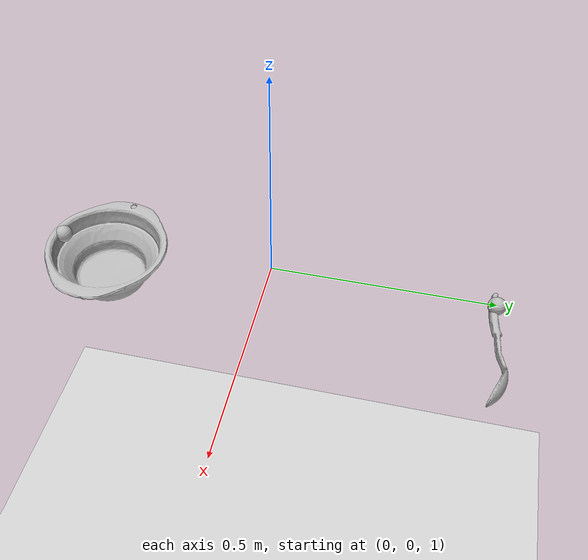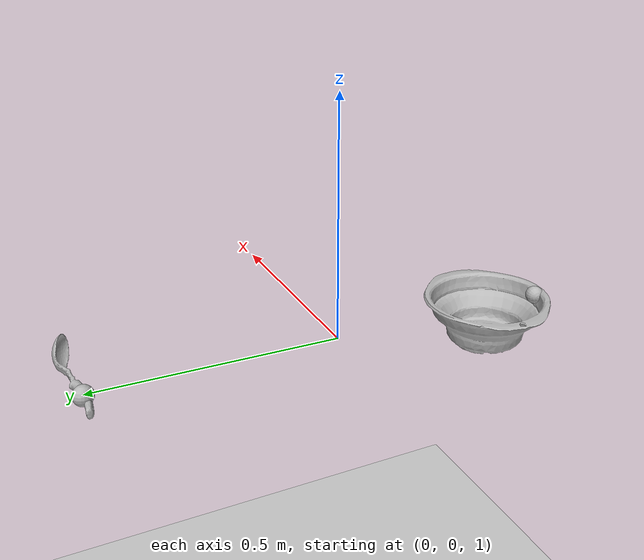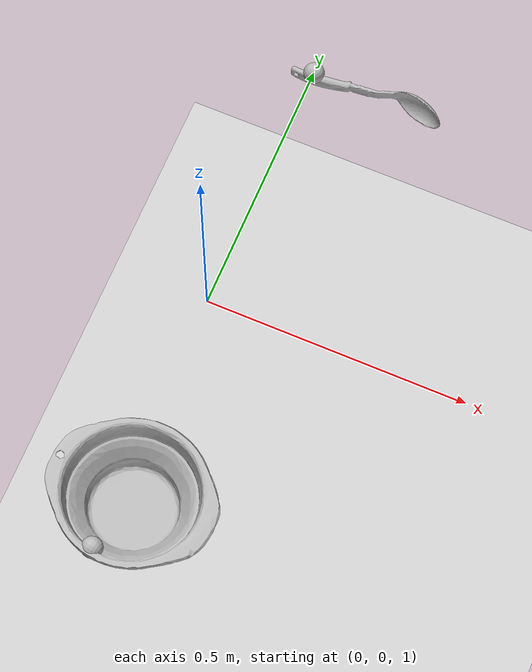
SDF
<sdf version="1.6">
 <world name="big_bowl_serving_spoon_v">
  <include><uri>model://sun</uri></include>
  <include><uri>model://ground_plane</uri></include>
  <include>
   <uri>model://b_serving_spoon</uri>
   <pose>0.112572 0.508131 0.984633 1.382835 0.015399 0.080779</pose>
  </include>
  <plugin name="grains_factory" filename="libGrainsFactoryPlugin.so">
   <pose>0.024164 -0.383989 0.959287 0 0 0</pose>
   <mass>0.001</mass>
   <radius>0.015</radius>
   <quantity>100</quantity>
   <friction>0.4</friction>
   <friction2>0.4</friction2>
   <velocity_decay>0.3</velocity_decay>
  </plugin>
  <include>
   <uri>model://b_big_bowl</uri>
   <pose>0.024164 -0.383989 0.959287 -0.017186 -0.000884 -0.101566</pose>
  </include>
  <include>
   <uri>model://gripper</uri>
   <name>left_ee</name>
   <pose>0 0.5 1 0 0 0</pose>
   <plugin name="l_force_controller" filename="libvelocity_controller_plugin.so">
    <linkName>link</linkName>
    <topicName>set_l_ee_twist</topicName>
    <gains>
     <linear><P>100.0</P><I>0.0</I><D>25.0</D></linear>
     <angular><P>100.0</P><I>0.0</I><D>25.0</D></angular>
    </gains>
   </plugin>
   <plugin name="l_grip" filename="libGripPlugin.so">
    <parentLinkName>link</parentLinkName>
    <childLinkName>b_serving_spoon::link</childLinkName>
    <relativePose>0.112571612 0.00813051871955 -0.0153673645109 1.3828344221275815 0.015398730956486372 0.08077832485708741</relativePose>
   </plugin>
   <plugin name="l_tf_broadcaster" filename="libtf_broadcaster_plugin.so">
    <linkName>link</linkName>
    <frameName>l_gripper_tool_frame</frameName>
   </plugin>
  </include>
  <include>
   <uri>model://gripper</uri>
   <name>right_ee</name>
   <pose>0 -0.5 1 1.547368 1.402341 1.343703</pose>
   <plugin name="r_force_controller" filename="libvelocity_controller_plugin.so">
    <linkName>link</linkName>
    <topicName>set_r_ee_twist</topicName>
    <gains>
     <linear><P>100.0</P><I>0.0</I><D>25.0</D></linear>
     <angular><P>100.0</P><I>0.0</I><D>25.0</D></angular>
    </gains>
   </plugin>
   <plugin name="r_grip" filename="libGripPlugin.so">
    <parentLinkName>link</parentLinkName>
    <childLinkName>b_big_bowl::link</childLinkName>
    <relativePose>0.06 0.11 0 -1.57 -1.35 1.3</relativePose>
   </plugin>
   <plugin name="r_tf_broadcaster" filename="libtf_broadcaster_plugin.so">
    <linkName>link</linkName>
    <frameName>r_gripper_tool_frame</frameName>
   </plugin>
  </include>
  <plugin name="feature_visualization_plugin" filename="libgiskard_visualization_plugin.so"/>
 </world>
</sdf>

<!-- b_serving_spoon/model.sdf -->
<sdf version='1.6'>
	<model name='b_serving_spoon'>
		<static>false</static>
		<pose>0 0 0 0 0 0</pose>

		<link name='link'>
			<inertial>
			<mass>0.15</mass>
			<pose>0.0019638 -6.1791e-05 0.00018857 0 0 0</pose>
				<inertia>
					<ixx>0.0000075</ixx>
					<iyy>0.00112875</iyy>
					<izz>0.00112875</izz>
				</inertia>
			</inertial>
			<sensor name="tool_contact_sensor" type="contact">
				<always_on>true</always_on>
				<update_rate>30.0</update_rate>
				<contact>
					<collision>collision</collision>
				</contact>
				<plugin name="tool_bumper" filename="libgazebo_ros_bumper.so">
					<bumperTopicName>tool_contact_sensor_state</bumperTopicName>
					<frameName>world</frameName>
				</plugin>
			</sensor>
			<collision name='collision'>
				<geometry>
					<mesh>
						<uri>model://b_serving_spoon/b_serving_spoon.dae</uri>
					</mesh>
				</geometry>
				<surface>
					<friction>
						<ode>
							<mu>0.2</mu>
							<mu2>0.2</mu2>
						</ode>
					</friction>
				</surface>
			</collision>
			<visual name='visual'>
				<geometry>
					<mesh>
						<uri>model://b_serving_spoon/b_serving_spoon.dae</uri>
					</mesh>
				</geometry>
			</visual>
		</link>
	</model>
</sdf>

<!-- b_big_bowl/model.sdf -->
<sdf version='1.6'>
	<model name='b_big_bowl'>
		<static>false</static>
		<pose>0 0 0 0 0 0</pose>

		<link name='link'>
			<inertial>
			<mass>0.35</mass>
			<pose>-0.0022966 -0.0039142 0.0041527 0 0 0</pose>
				<inertia>
					<ixx>0.0009479167</ixx>
					<iyy>0.0009479167</iyy>
					<izz>0.00175</izz>
				</inertia>
			</inertial>
			<collision name='collision'>
				<geometry>
					<mesh>
						<uri>model://b_big_bowl/b_big_bowl.dae</uri>
					</mesh>
				</geometry>
				<surface>
					<friction>
						<ode>
							<mu>0.2</mu>
							<mu2>0.2</mu2>
						</ode>
					</friction>
				</surface>
			</collision>
			<visual name='visual'>
				<geometry>
					<mesh>
						<uri>model://b_big_bowl/b_big_bowl.dae</uri>
					</mesh>
				</geometry>
			</visual>
		</link>
	</model>
</sdf>

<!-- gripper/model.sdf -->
<sdf version='1.6'>
    <model name='gripper'>
        <static>false</static>
        <allow_auto_disable>false</allow_auto_disable>

        <pose>0 0 0 0 0 0</pose>

        <link name='link'>
            <pose>0 0 0 0 0 0</pose>

            <gravity>false</gravity>

            <visual name='visual'>
                <geometry>
                    <sphere>
                        <radius>0.02</radius>
                    </sphere>
                </geometry>
            </visual>

        </link>
    </model>
</sdf>
